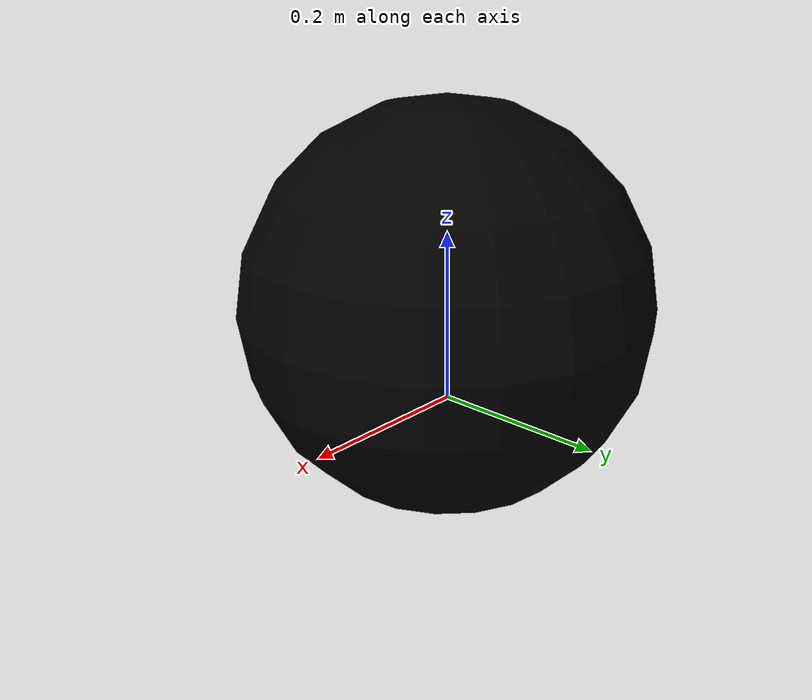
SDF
<?xml version="1.0"?>
<sdf version="1.5">
  <model name="black_a7">
    <static>true</static>
    <pose>0 0 0.1175 0 0 0</pose>
    <link name="base_link">
      <visual name="visual">
        <geometry>
          <sphere><radius>0.235</radius></sphere>
        </geometry>
        <material>
          <ambient>0 0 0 1</ambient>
          <diffuse>0 0 0 1</diffuse>
          <specular>0.5 0.5 0.5 1</specular>
          <emissive>0 0 0 0</emissive>
        </material>
      </visual>
      <collision name="collision">
        <geometry>
          <sphere><radius>0.235</radius></sphere>
        </geometry>
      </collision>
    </link>
  </model>
</sdf>
